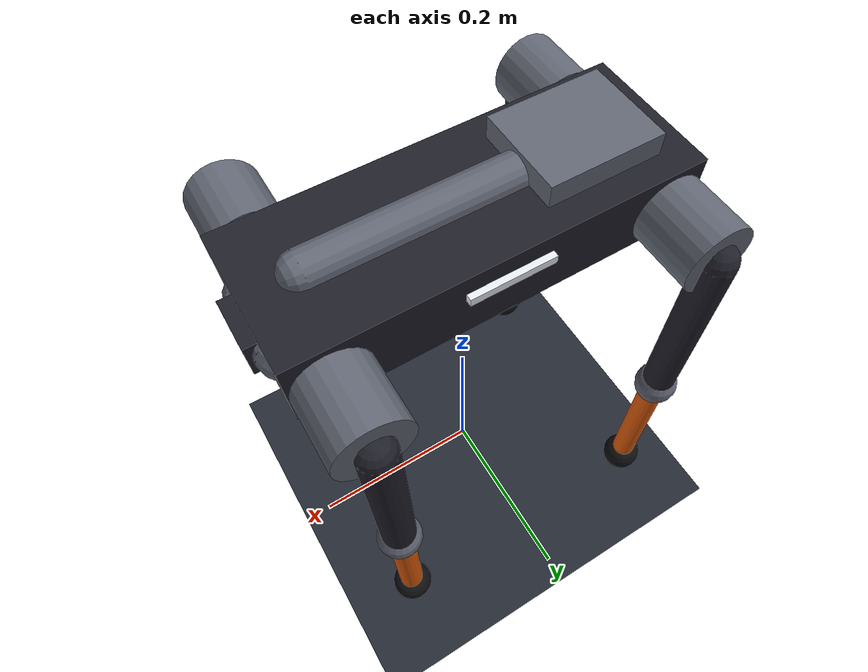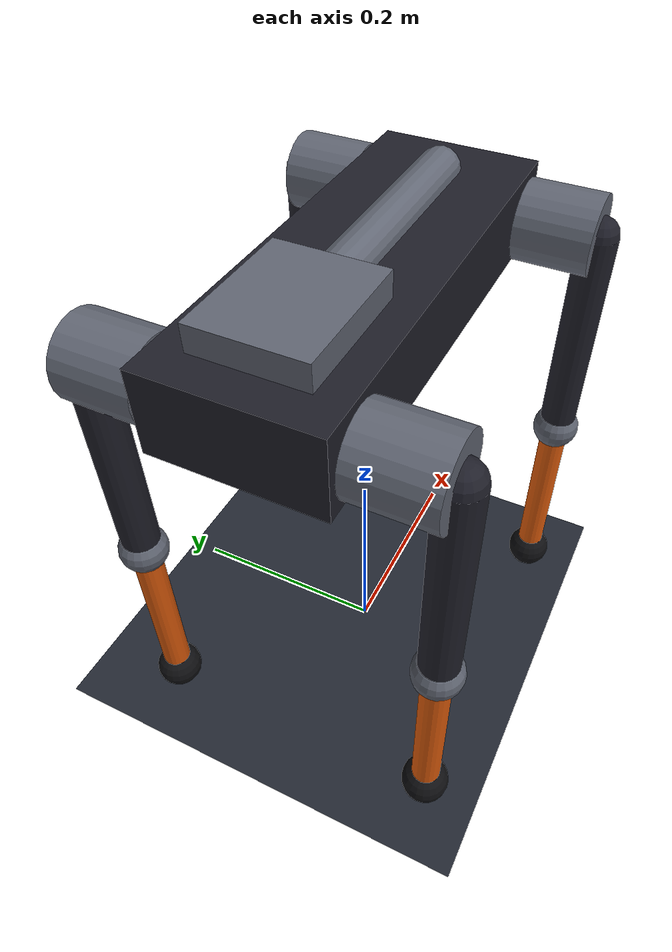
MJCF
<mujoco model="velox scene">
  <include file="velox.xml"/>

  <option iterations="100" ls_iterations="10" timestep="0.004" integrator="implicitfast"/>
  <statistic center="0 0 0.3" extent="1.0" meansize="0.05"/>

  <compiler angle="radian" autolimits="true"/>

  <visual>
    <headlight diffuse="0.6 0.6 0.6" ambient="0.3 0.3 0.3" specular="0 0 0"/>
    <rgba haze="0.12 0.20 0.30 1"/>
    <global azimuth="150" elevation="-20"/>
  </visual>

  <asset>
    <texture type="skybox" builtin="gradient" rgb1="0.25 0.40 0.60" rgb2="0.02 0.02 0.06"
             width="512" height="3072"/>
    <texture type="2d" name="groundplane" builtin="checker" mark="edge"
             rgb1="0.18 0.20 0.24" rgb2="0.10 0.12 0.16"
             markrgb="0.60 0.62 0.68" width="300" height="300"/>
    <material name="groundplane" texture="groundplane" texuniform="true"
              texrepeat="6 6" reflectance="0.15"/>
  </asset>

  <!-- qpos layout: x y z  qw qx qy qz  (FL:abd,hip,knee) (FR:abd,hip,knee) (RL:abd,hip,knee) (RR:abd,hip,knee) -->
  <keyframe>
    <key name="stand"
         qpos="0 0 0.422  1 0 0 0  0 0 0  0 0 0  0 0 0  0 0 0"
         ctrl="0 0 0  0 0 0  0 0 0  0 0 0"/>
    <key name="home"
         qpos="0 0 0.328  1 0 0 0  0 0.7 -1.4  0 0.7 -1.4  0 0.7 -1.4  0 0.7 -1.4"
         ctrl="0 0.7 -1.4  0 0.7 -1.4  0 0.7 -1.4  0 0.7 -1.4"/>
    <key name="tuck"
         qpos="0 0 0.24  1 0 0 0  0 1.2 -2.4  0 1.2 -2.4  0 1.2 -2.4  0 1.2 -2.4"
         ctrl="0 1.2 -2.4  0 1.2 -2.4  0 1.2 -2.4  0 1.2 -2.4"/>
  </keyframe>

  <worldbody>
    <light pos="0 0 2.5" dir="0 0 -1" directional="true"
           diffuse="0.8 0.8 0.8" specular="0.1 0.1 0.1"/>
    <light pos="2 -2 2" dir="-1 1 -1" directional="true"
           diffuse="0.3 0.3 0.35" specular="0 0 0" castshadow="false"/>
    <geom name="floor" size="0 0 0.05" type="plane" material="groundplane"
          conaffinity="1" contype="1"/>
  </worldbody>
</mujoco>

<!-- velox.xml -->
<mujoco model="velox">
  <compiler angle="radian" autolimits="true"/>

  <!-- ═══════════════════════════════════════════════════════════════ DEFAULTS -->
  <default>
    <default class="velox">
      <geom friction="0.6" margin="0.001" condim="3"/>
      <joint damping="2.5" armature="0.012" frictionloss="0.25"/>

      <!-- Abduction: rotates around X (frontal plane) -->
      <default class="velox_abduction">
        <joint axis="1 0 0" range="-0.7 0.7"/>
        <position kp="80"  ctrlrange="-0.7 0.7"  forcerange="-25 25"/>
      </default>

      <!-- Front hip flexion: wider forward range for dynamic gaits -->
      <default class="velox_front_hip">
        <joint axis="0 1 0" range="-1.5 3.0"/>
        <position kp="120" ctrlrange="-1.5 3.0"  forcerange="-35 35"/>
      </default>

      <!-- Rear hip flexion: biased toward extension for push-off -->
      <default class="velox_rear_hip">
        <joint axis="0 1 0" range="-0.5 4.0"/>
        <position kp="120" ctrlrange="-0.5 4.0"  forcerange="-35 35"/>
      </default>

      <!-- Knee: negative range → knee bends backward (behind the thigh) -->
      <default class="velox_knee">
        <joint axis="0 1 0" range="-2.7 -0.5"/>
        <position kp="100" ctrlrange="-2.7 -0.5" forcerange="-45 45"/>
      </default>

      <!-- Foot contact: high-priority sphere with 3-D friction cone -->
      <default class="velox_foot">
        <geom type="sphere" size="0.022" pos="0 0 -0.19"
              priority="1" condim="6" solimp="0.015 1 0.022"
              friction="0.8 0.02 0.01"/>
      </default>
    </default>
  </default>

  <!-- ═══════════════════════════════════════════════════════════════ ASSETS -->
  <asset>
    <!-- Body panels: near-black charcoal -->
    <material name="velox_dark"   rgba="0.12 0.12 0.16 1"/>
    <!-- Structural joints / motor housings: medium steel gray -->
    <material name="velox_steel"  rgba="0.38 0.40 0.45 1"/>
    <!-- Lower legs & accents: burnt orange (high visibility) -->
    <material name="velox_orange" rgba="0.88 0.36 0.04 1"/>
    <!-- Feet: matte rubber black -->
    <material name="velox_rubber" rgba="0.06 0.06 0.07 1"/>
    <!-- Sensor / detail highlights: cool white -->
    <material name="velox_white"  rgba="0.90 0.92 0.95 1"/>
  </asset>

  <!-- ═══════════════════════════════════════════════════════════════ BODIES -->
  <worldbody>
    <body name="velox_base" pos="0 0 0.422" childclass="velox">
      <freejoint/>

      <!-- IMU at body centre -->
      <site name="velox_imu" size="0.01" pos="0 0 0"/>

      <!-- Tracking camera (third-person) -->
      <camera name="velox_track" mode="trackcom"
              pos="0 -1.5 0.8" xyaxes="1 0 0 0 0.47 0.88"/>

      <!-- Inertial (body-frame CoM slightly forward due to sensors) -->
      <inertial pos="0.015 0 0" mass="6.0"
                diaginertia="0.0145 0.0833 0.0913"/>

      <!-- ─── Torso geometry ─── -->
      <!-- Main structural shell -->
      <geom name="velox_torso" type="box" size="0.19 0.07 0.035"
            material="velox_dark"/>
      <!-- Top spine ridge (visual only) -->
      <geom type="capsule" size="0.018" fromto="-0.14 0 0.035 0.14 0 0.035"
            material="velox_steel" contype="0" conaffinity="0"/>
      <!-- Front sensor bump (depth camera housing) -->
      <geom type="capsule" size="0.023"
            fromto="0.175 -0.03 -0.005 0.175 0.03 -0.005"
            material="velox_steel" contype="0" conaffinity="0"/>
      <geom type="box" size="0.012 0.025 0.018" pos="0.19 0 -0.005"
            material="velox_dark" contype="0" conaffinity="0"/>
      <!-- Rear battery pack (visual bump) -->
      <geom type="box" size="0.055 0.045 0.022" pos="-0.105 0 0.035"
            material="velox_steel" contype="0" conaffinity="0"/>
      <!-- Small status LED strip -->
      <geom type="box" size="0.04 0.004 0.004" pos="0.0 0.072 0.012"
            material="velox_white" contype="0" conaffinity="0"/>

      <!-- ═══════════════════════════════ FRONT-LEFT LEG ══════════════════ -->
      <body name="velox_FL_hip" pos="0.155 0.073 0">
        <joint name="velox_FL_abduction" class="velox_abduction"/>
        <inertial pos="0 0.032 0" mass="0.50"
                  diaginertia="3.8e-4 4.5e-4 4.5e-4"/>
        <!-- Motor housing cylinder — aligned along Y (abduction axis) -->
        <geom type="cylinder" size="0.034 0.0325" pos="0 0.0325 0"
              quat="0.707107 0.707107 0 0" material="velox_steel"/>
        <!-- Abductor link bar -->
        <geom type="capsule" size="0.012" fromto="0 0 0 0 0.065 0"
              material="velox_dark" contype="0" conaffinity="0"/>

        <body name="velox_FL_thigh" pos="0 0.065 0">
          <joint name="velox_FL_hip_joint" class="velox_front_hip"/>
          <inertial pos="0 0 -0.105" mass="0.95"
                    diaginertia="3.25e-3 3.25e-3 1.45e-4"/>
          <geom type="capsule" size="0.017" fromto="0 0 0 0 0 -0.21"
                material="velox_dark"/>
          <!-- Knee cap accent sphere -->
          <geom type="sphere" size="0.022" pos="0 0 -0.21"
                material="velox_steel" contype="0" conaffinity="0"/>

          <body name="velox_FL_calf" pos="0 0 -0.21">
            <joint name="velox_FL_knee" class="velox_knee"/>
            <inertial pos="0 0 -0.090" mass="0.28"
                      diaginertia="6.8e-4 6.8e-4 3.0e-5"/>
            <geom type="capsule" size="0.013" fromto="0 0 0 0 0 -0.19"
                  material="velox_orange"/>
            <geom name="velox_FL_foot" class="velox_foot"
                  material="velox_rubber"/>
          </body>
        </body>
      </body>

      <!-- ═══════════════════════════════ FRONT-RIGHT LEG ═════════════════ -->
      <body name="velox_FR_hip" pos="0.155 -0.073 0">
        <joint name="velox_FR_abduction" class="velox_abduction"/>
        <inertial pos="0 -0.032 0" mass="0.50"
                  diaginertia="3.8e-4 4.5e-4 4.5e-4"/>
        <geom type="cylinder" size="0.034 0.0325" pos="0 -0.0325 0"
              quat="0.707107 0.707107 0 0" material="velox_steel"/>
        <geom type="capsule" size="0.012" fromto="0 0 0 0 -0.065 0"
              material="velox_dark" contype="0" conaffinity="0"/>

        <body name="velox_FR_thigh" pos="0 -0.065 0">
          <joint name="velox_FR_hip_joint" class="velox_front_hip"/>
          <inertial pos="0 0 -0.105" mass="0.95"
                    diaginertia="3.25e-3 3.25e-3 1.45e-4"/>
          <geom type="capsule" size="0.017" fromto="0 0 0 0 0 -0.21"
                material="velox_dark"/>
          <geom type="sphere" size="0.022" pos="0 0 -0.21"
                material="velox_steel" contype="0" conaffinity="0"/>

          <body name="velox_FR_calf" pos="0 0 -0.21">
            <joint name="velox_FR_knee" class="velox_knee"/>
            <inertial pos="0 0 -0.090" mass="0.28"
                      diaginertia="6.8e-4 6.8e-4 3.0e-5"/>
            <geom type="capsule" size="0.013" fromto="0 0 0 0 0 -0.19"
                  material="velox_orange"/>
            <geom name="velox_FR_foot" class="velox_foot"
                  material="velox_rubber"/>
          </body>
        </body>
      </body>

      <!-- ═══════════════════════════════ REAR-LEFT LEG ═══════════════════ -->
      <body name="velox_RL_hip" pos="-0.155 0.073 0">
        <joint name="velox_RL_abduction" class="velox_abduction"/>
        <inertial pos="0 0.032 0" mass="0.50"
                  diaginertia="3.8e-4 4.5e-4 4.5e-4"/>
        <geom type="cylinder" size="0.034 0.0325" pos="0 0.0325 0"
              quat="0.707107 0.707107 0 0" material="velox_steel"/>
        <geom type="capsule" size="0.012" fromto="0 0 0 0 0.065 0"
              material="velox_dark" contype="0" conaffinity="0"/>

        <body name="velox_RL_thigh" pos="0 0.065 0">
          <joint name="velox_RL_hip_joint" class="velox_rear_hip"/>
          <inertial pos="0 0 -0.105" mass="0.95"
                    diaginertia="3.25e-3 3.25e-3 1.45e-4"/>
          <geom type="capsule" size="0.017" fromto="0 0 0 0 0 -0.21"
                material="velox_dark"/>
          <geom type="sphere" size="0.022" pos="0 0 -0.21"
                material="velox_steel" contype="0" conaffinity="0"/>

          <body name="velox_RL_calf" pos="0 0 -0.21">
            <joint name="velox_RL_knee" class="velox_knee"/>
            <inertial pos="0 0 -0.090" mass="0.28"
                      diaginertia="6.8e-4 6.8e-4 3.0e-5"/>
            <geom type="capsule" size="0.013" fromto="0 0 0 0 0 -0.19"
                  material="velox_orange"/>
            <geom name="velox_RL_foot" class="velox_foot"
                  material="velox_rubber"/>
          </body>
        </body>
      </body>

      <!-- ═══════════════════════════════ REAR-RIGHT LEG ══════════════════ -->
      <body name="velox_RR_hip" pos="-0.155 -0.073 0">
        <joint name="velox_RR_abduction" class="velox_abduction"/>
        <inertial pos="0 -0.032 0" mass="0.50"
                  diaginertia="3.8e-4 4.5e-4 4.5e-4"/>
        <geom type="cylinder" size="0.034 0.0325" pos="0 -0.0325 0"
              quat="0.707107 0.707107 0 0" material="velox_steel"/>
        <geom type="capsule" size="0.012" fromto="0 0 0 0 -0.065 0"
              material="velox_dark" contype="0" conaffinity="0"/>

        <body name="velox_RR_thigh" pos="0 -0.065 0">
          <joint name="velox_RR_hip_joint" class="velox_rear_hip"/>
          <inertial pos="0 0 -0.105" mass="0.95"
                    diaginertia="3.25e-3 3.25e-3 1.45e-4"/>
          <geom type="capsule" size="0.017" fromto="0 0 0 0 0 -0.21"
                material="velox_dark"/>
          <geom type="sphere" size="0.022" pos="0 0 -0.21"
                material="velox_steel" contype="0" conaffinity="0"/>

          <body name="velox_RR_calf" pos="0 0 -0.21">
            <joint name="velox_RR_knee" class="velox_knee"/>
            <inertial pos="0 0 -0.090" mass="0.28"
                      diaginertia="6.8e-4 6.8e-4 3.0e-5"/>
            <geom type="capsule" size="0.013" fromto="0 0 0 0 0 -0.19"
                  material="velox_orange"/>
            <geom name="velox_RR_foot" class="velox_foot"
                  material="velox_rubber"/>
          </body>
        </body>
      </body>

    </body>
  </worldbody>

  <!-- ══════════════════════════════════════════════════════════════ ACTUATORS
       Order: FL → FR → RL → RR, within each leg: abduction, hip, knee
  -->
  <actuator>
    <position name="velox_FL_abduction" joint="velox_FL_abduction" class="velox_abduction"/>
    <position name="velox_FL_hip"       joint="velox_FL_hip_joint"  class="velox_front_hip"/>
    <position name="velox_FL_knee"      joint="velox_FL_knee"        class="velox_knee"/>

    <position name="velox_FR_abduction" joint="velox_FR_abduction"  class="velox_abduction"/>
    <position name="velox_FR_hip"       joint="velox_FR_hip_joint"   class="velox_front_hip"/>
    <position name="velox_FR_knee"      joint="velox_FR_knee"        class="velox_knee"/>

    <position name="velox_RL_abduction" joint="velox_RL_abduction"  class="velox_abduction"/>
    <position name="velox_RL_hip"       joint="velox_RL_hip_joint"   class="velox_rear_hip"/>
    <position name="velox_RL_knee"      joint="velox_RL_knee"        class="velox_knee"/>

    <position name="velox_RR_abduction" joint="velox_RR_abduction"  class="velox_abduction"/>
    <position name="velox_RR_hip"       joint="velox_RR_hip_joint"   class="velox_rear_hip"/>
    <position name="velox_RR_knee"      joint="velox_RR_knee"        class="velox_knee"/>
  </actuator>

  <!-- ════════════════════════════════════════════════════════════════ SENSORS -->
  <sensor>
    <framepos      objtype="site" objname="velox_imu" name="velox_position"/>
    <framequat     objtype="site" objname="velox_imu" name="velox_orientation"/>
    <gyro          site="velox_imu"                   name="velox_gyro"/>
    <velocimeter   site="velox_imu"                   name="velox_linvel"/>
    <accelerometer site="velox_imu"                   name="velox_accelerometer"/>
    <framezaxis    objtype="site" objname="velox_imu" name="velox_upvector"/>
    <framexaxis    objtype="site" objname="velox_imu" name="velox_forwardvector"/>
    <framelinvel   objtype="site" objname="velox_imu" name="velox_global_linvel"/>
    <frameangvel   objtype="site" objname="velox_imu" name="velox_global_angvel"/>
  </sensor>

</mujoco>
